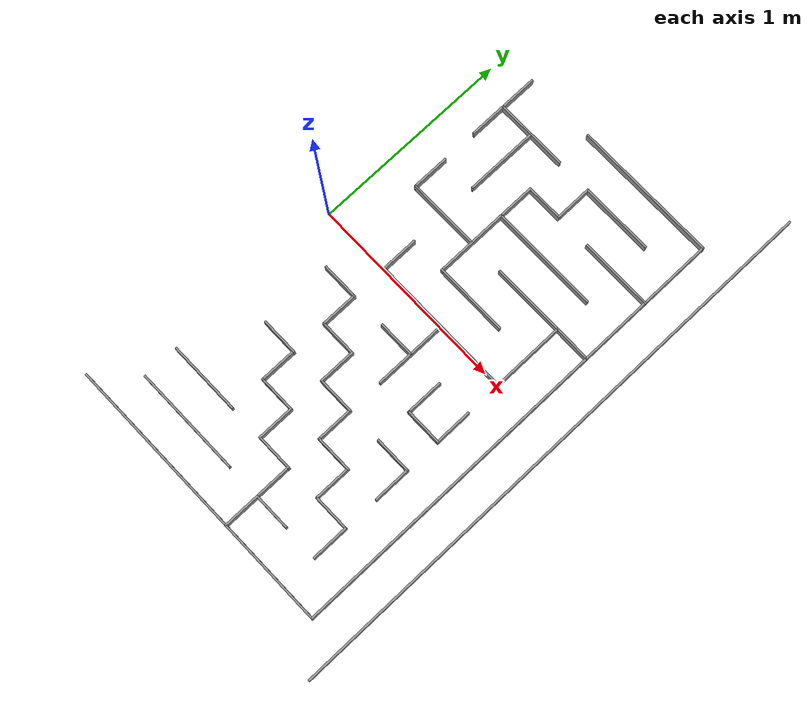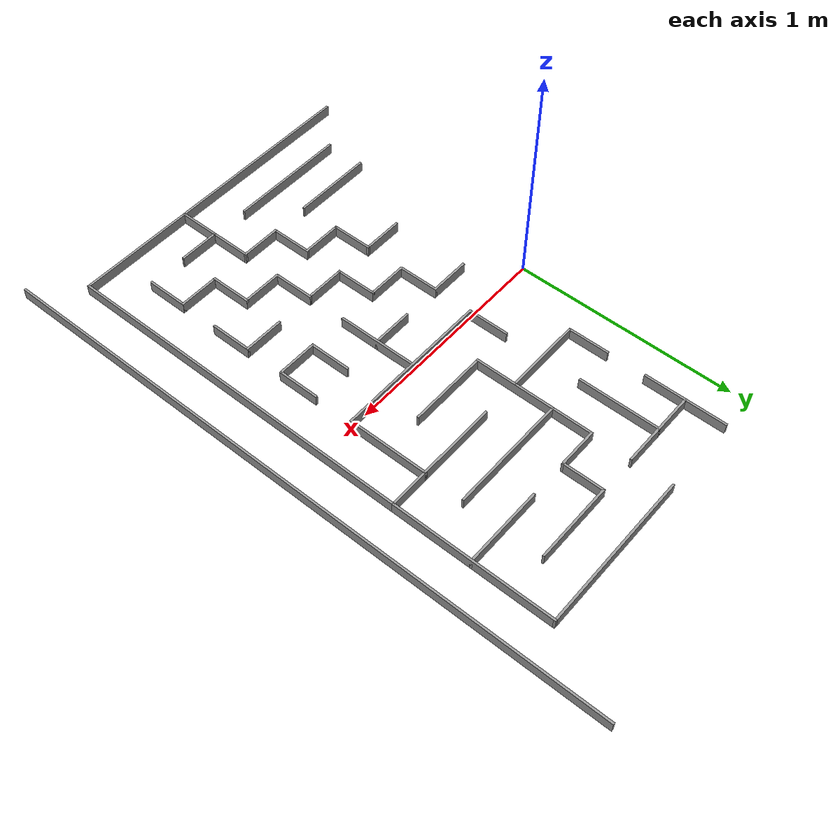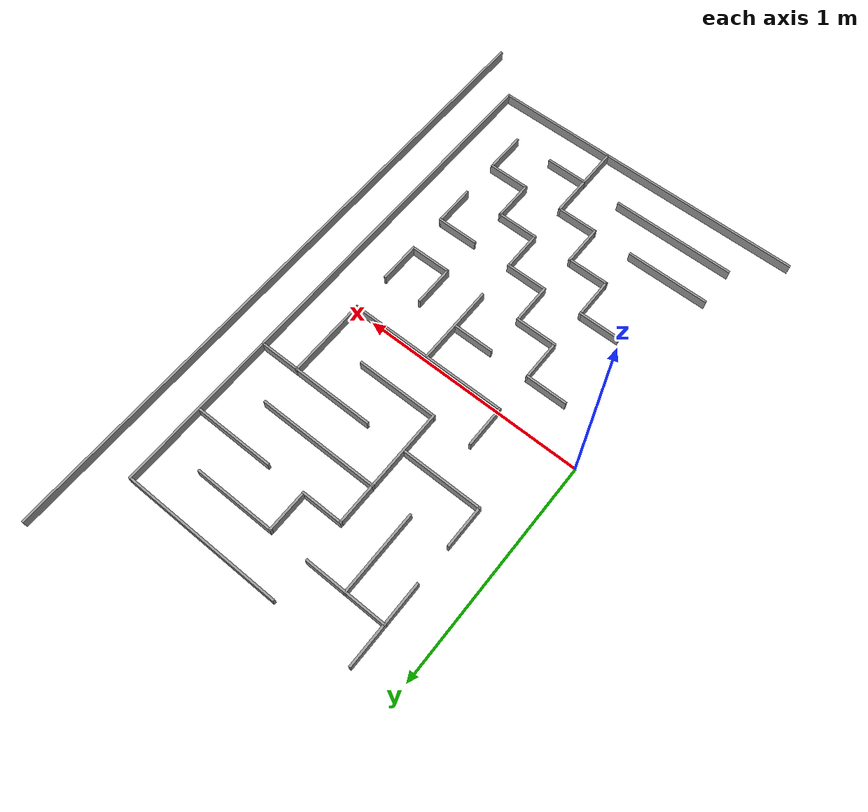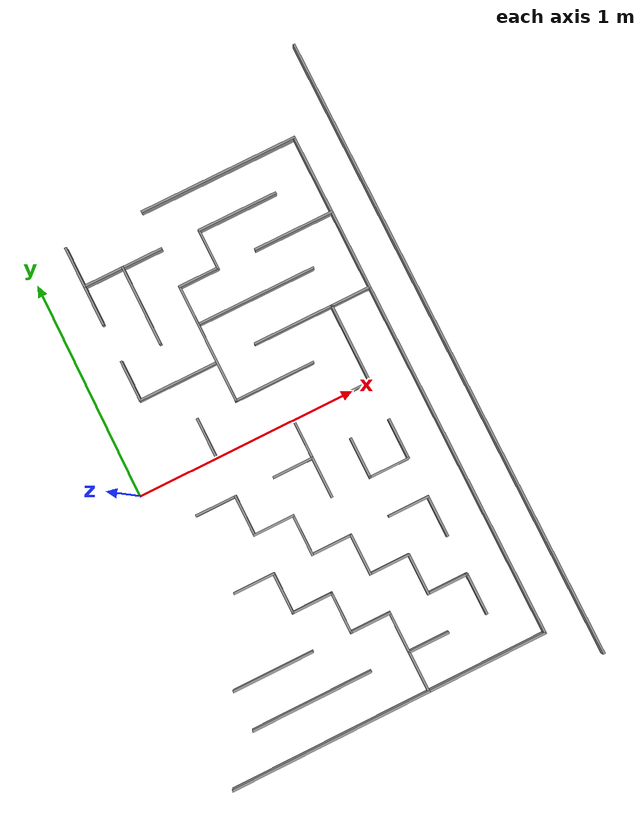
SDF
<sdf version="1.7">
 <model name="Maze1">
  <pose>-0.527918 0 0 0 -0 0</pose>
  <link name="Wall_115">
   <collision name="Wall_115_Collision">
    <geometry><box><size>0.19 0.01 0.05</size></box></geometry>
    <pose>0 0 0.025 0 -0 0</pose>
   </collision>
   <visual name="Wall_115_Visual">
    <pose>0 0 0.025 0 -0 0</pose>
    <geometry><box><size>0.19 0.01 0.05</size></box></geometry>
    <material>
     <script><uri>file://media/materials/scripts/gazebo.material</uri><name>Gazebo/Grey</name></script>
     <ambient>1 1 1 1</ambient>
    </material>
    <meta><layer>0</layer></meta>
   </visual>
   <pose>0.977918 -0.72 0 0 -0 3.14159</pose>
  </link>
  <link name="Wall_116">
   <collision name="Wall_116_Collision">
    <geometry><box><size>0.19 0.01 0.05</size></box></geometry>
    <pose>0 0 0.025 0 -0 0</pose>
   </collision>
   <visual name="Wall_116_Visual">
    <pose>0 0 0.025 0 -0 0</pose>
    <geometry><box><size>0.19 0.01 0.05</size></box></geometry>
    <material>
     <script><uri>file://media/materials/scripts/gazebo.material</uri><name>Gazebo/Grey</name></script>
     <ambient>1 1 1 1</ambient>
    </material>
    <meta><layer>0</layer></meta>
   </visual>
   <pose>0.887918 -0.63 0 0 -0 1.5708</pose>
  </link>
  <link name="Wall_117">
   <collision name="Wall_117_Collision">
    <geometry><box><size>0.190641 0.01 0.05</size></box></geometry>
    <pose>0 0 0.025 0 -0 0</pose>
   </collision>
   <visual name="Wall_117_Visual">
    <pose>0 0 0.025 0 -0 0</pose>
    <geometry><box><size>0.190641 0.01 0.05</size></box></geometry>
    <material>
     <script><uri>file://media/materials/scripts/gazebo.material</uri><name>Gazebo/Grey</name></script>
     <ambient>1 1 1 1</ambient>
    </material>
    <meta><layer>0</layer></meta>
   </visual>
   <pose>0.797918 -0.54 0 0 -0 3.14159</pose>
  </link>
  <link name="Wall_123">
   <collision name="Wall_123_Collision">
    <geometry><box><size>0.37 0.01 0.05</size></box></geometry>
    <pose>0 0 0.025 0 -0 0</pose>
   </collision>
   <visual name="Wall_123_Visual">
    <pose>0 0 0.025 0 -0 0</pose>
    <geometry><box><size>0.37 0.01 0.05</size></box></geometry>
    <material>
     <script><uri>file://media/materials/scripts/gazebo.material</uri><name>Gazebo/Grey</name></script>
     <ambient>1 1 1 1</ambient>
    </material>
    <meta><layer>0</layer></meta>
   </visual>
   <pose>0.707918 -0.9 0 0 -0 0</pose>
  </link>
  <link name="Wall_125">
   <collision name="Wall_125_Collision">
    <geometry><box><size>0.55 0.01 0.05</size></box></geometry>
    <pose>0 0 0.025 0 -0 0</pose>
   </collision>
   <visual name="Wall_125_Visual">
    <pose>0 0 0.025 0 -0 0</pose>
    <geometry><box><size>0.55 0.01 0.05</size></box></geometry>
    <material>
     <script><uri>file://media/materials/scripts/gazebo.material</uri><name>Gazebo/Grey</name></script>
     <ambient>1 1 1 1</ambient>
    </material>
    <meta><layer>0</layer></meta>
   </visual>
   <pose>1.51792 -1.26 0 0 -0 0</pose>
  </link>
  <link name="Wall_126">
   <collision name="Wall_126_Collision">
    <geometry><box><size>1.63 0.01 0.05</size></box></geometry>
    <pose>0 0 0.025 0 -0 0</pose>
   </collision>
   <visual name="Wall_126_Visual">
    <pose>0 0 0.025 0 -0 0</pose>
    <geometry><box><size>1.63 0.01 0.05</size></box></geometry>
    <material>
     <script><uri>file://media/materials/scripts/gazebo.material</uri><name>Gazebo/Grey</name></script>
     <ambient>1 1 1 1</ambient>
    </material>
    <meta><layer>0</layer></meta>
   </visual>
   <pose>1.78792 -0.45 0 0 -0 1.5708</pose>
  </link>
  <link name="Wall_135">
   <collision name="Wall_135_Collision">
    <geometry><box><size>0.19 0.01 0.05</size></box></geometry>
    <pose>0 0 0.025 0 -0 0</pose>
   </collision>
   <visual name="Wall_135_Visual">
    <pose>0 0 0.025 0 -0 0</pose>
    <geometry><box><size>0.19 0.01 0.05</size></box></geometry>
    <material>
     <script><uri>file://media/materials/scripts/gazebo.material</uri><name>Gazebo/Grey</name></script>
     <ambient>1 1 1 1</ambient>
    </material>
    <meta><layer>0</layer></meta>
   </visual>
   <pose>1.51792 -0.54 0 0 -0 0</pose>
  </link>
  <link name="Wall_136">
   <collision name="Wall_136_Collision">
    <geometry><box><size>0.19 0.01 0.05</size></box></geometry>
    <pose>0 0 0.025 0 -0 0</pose>
   </collision>
   <visual name="Wall_136_Visual">
    <pose>0 0 0.025 0 -0 0</pose>
    <geometry><box><size>0.19 0.01 0.05</size></box></geometry>
    <material>
     <script><uri>file://media/materials/scripts/gazebo.material</uri><name>Gazebo/Grey</name></script>
     <ambient>1 1 1 1</ambient>
    </material>
    <meta><layer>0</layer></meta>
   </visual>
   <pose>1.60792 -0.63 0 0 -0 -1.5708</pose>
  </link>
  <link name="Wall_138">
   <collision name="Wall_138_Collision">
    <geometry><box><size>0.19 0.01 0.05</size></box></geometry>
    <pose>0 0 0.025 0 -0 0</pose>
   </collision>
   <visual name="Wall_138_Visual">
    <pose>0 0 0.025 0 -0 0</pose>
    <geometry><box><size>0.19 0.01 0.05</size></box></geometry>
    <material>
     <script><uri>file://media/materials/scripts/gazebo.material</uri><name>Gazebo/Grey</name></script>
     <ambient>1 1 1 1</ambient>
    </material>
    <meta><layer>0</layer></meta>
   </visual>
   <pose>1.42792 -0.27 0 0 -0 -1.5708</pose>
  </link>
  <link name="Wall_139">
   <collision name="Wall_139_Collision">
    <geometry><box><size>0.19 0.01 0.05</size></box></geometry>
    <pose>0 0 0.025 0 -0 0</pose>
   </collision>
   <visual name="Wall_139_Visual">
    <pose>0 0 0.025 0 -0 0</pose>
    <geometry><box><size>0.19 0.01 0.05</size></box></geometry>
    <material>
     <script><uri>file://media/materials/scripts/gazebo.material</uri><name>Gazebo/Grey</name></script>
     <ambient>1 1 1 1</ambient>
    </material>
    <meta><layer>0</layer></meta>
   </visual>
   <pose>1.51792 -0.36 0 0 -0 0</pose>
  </link>
  <link name="Wall_140">
   <collision name="Wall_140_Collision">
    <geometry><box><size>0.19 0.01 0.05</size></box></geometry>
    <pose>0 0 0.025 0 -0 0</pose>
   </collision>
   <visual name="Wall_140_Visual">
    <pose>0 0 0.025 0 -0 0</pose>
    <geometry><box><size>0.19 0.01 0.05</size></box></geometry>
    <material>
     <script><uri>file://media/materials/scripts/gazebo.material</uri><name>Gazebo/Grey</name></script>
     <ambient>1 1 1 1</ambient>
    </material>
    <meta><layer>0</layer></meta>
   </visual>
   <pose>1.60792 -0.27 0 0 -0 1.5708</pose>
  </link>
  <link name="Wall_142">
   <collision name="Wall_142_Collision">
    <geometry><box><size>0.37 0.01 0.05</size></box></geometry>
    <pose>0 0 0.025 0 -0 0</pose>
   </collision>
   <visual name="Wall_142_Visual">
    <pose>0 0 0.025 0 -0 0</pose>
    <geometry><box><size>0.37 0.01 0.05</size></box></geometry>
    <material>
     <script><uri>file://media/materials/scripts/gazebo.material</uri><name>Gazebo/Grey</name></script>
     <ambient>1 1 1 1</ambient>
    </material>
    <meta><layer>0</layer></meta>
   </visual>
   <pose>1.24792 -0.18 0 0 -0 -1.5708</pose>
  </link>
  <link name="Wall_144">
   <collision name="Wall_144_Collision">
    <geometry><box><size>0.19 0.01 0.05</size></box></geometry>
    <pose>0 0 0.025 0 -0 0</pose>
   </collision>
   <visual name="Wall_144_Visual">
    <pose>0 0 0.025 0 -0 0</pose>
    <geometry><box><size>0.19 0.01 0.05</size></box></geometry>
    <material>
     <script><uri>file://media/materials/scripts/gazebo.material</uri><name>Gazebo/Grey</name></script>
     <ambient>1 1 1 1</ambient>
    </material>
    <meta><layer>0</layer></meta>
   </visual>
   <pose>1.15792 -0.18 0 0 -0 3.14159</pose>
  </link>
  <link name="Wall_15">
   <collision name="Wall_15_Collision">
    <geometry><box><size>0.19 0.01 0.05</size></box></geometry>
    <pose>0 0 0.025 0 -0 0</pose>
   </collision>
   <visual name="Wall_15_Visual">
    <pose>0 0 0.025 0 -0 0</pose>
    <geometry><box><size>0.19 0.01 0.05</size></box></geometry>
    <material>
     <script><uri>file://media/materials/scripts/gazebo.material</uri><name>Gazebo/Grey</name></script>
     <ambient>1 1 1 1</ambient>
    </material>
    <meta><layer>0</layer></meta>
   </visual>
   <pose>0.887918 0.09 0 0 -0 -1.5708</pose>
  </link>
  <link name="Wall_153">
   <collision name="Wall_153_Collision">
    <geometry><box><size>0.73 0.01 0.05</size></box></geometry>
    <pose>0 0 0.025 0 -0 0</pose>
   </collision>
   <visual name="Wall_153_Visual">
    <pose>0 0 0.025 0 -0 0</pose>
    <geometry><box><size>0.73 0.01 0.05</size></box></geometry>
    <material>
     <script><uri>file://media/materials/scripts/gazebo.material</uri><name>Gazebo/Grey</name></script>
     <ambient>1 1 1 1</ambient>
    </material>
    <meta><layer>0</layer></meta>
   </visual>
   <pose>1.78792 0.72 0 0 -0 1.5708</pose>
  </link>
  <link name="Wall_154">
   <collision name="Wall_154_Collision">
    <geometry><box><size>0.73 0.01 0.05</size></box></geometry>
    <pose>0 0 0.025 0 -0 0</pose>
   </collision>
   <visual name="Wall_154_Visual">
    <pose>0 0 0.025 0 -0 0</pose>
    <geometry><box><size>0.73 0.01 0.05</size></box></geometry>
    <material>
     <script><uri>file://media/materials/scripts/gazebo.material</uri><name>Gazebo/Grey</name></script>
     <ambient>1 1 1 1</ambient>
    </material>
    <meta><layer>0</layer></meta>
   </visual>
   <pose>1.42792 1.08 0 0 -0 3.14159</pose>
  </link>
  <link name="Wall_156">
   <collision name="Wall_156_Collision">
    <geometry><box><size>0.37 0.01 0.05</size></box></geometry>
    <pose>0 0 0.025 0 -0 0</pose>
   </collision>
   <visual name="Wall_156_Visual">
    <pose>0 0 0.025 0 -0 0</pose>
    <geometry><box><size>0.37 0.01 0.05</size></box></geometry>
    <material>
     <script><uri>file://media/materials/scripts/gazebo.material</uri><name>Gazebo/Grey</name></script>
     <ambient>1 1 1 1</ambient>
    </material>
    <meta><layer>0</layer></meta>
   </visual>
   <pose>1.60792 0.72 0 0 -0 3.14159</pose>
  </link>
  <link name="Wall_16">
   <collision name="Wall_16_Collision">
    <geometry><box><size>0.73 0.01 0.05</size></box></geometry>
    <pose>0 0 0.025 0 -0 0</pose>
   </collision>
   <visual name="Wall_16_Visual">
    <pose>0 0 0.025 0 -0 0</pose>
    <geometry><box><size>0.73 0.01 0.05</size></box></geometry>
    <material>
     <script><uri>file://media/materials/scripts/gazebo.material</uri><name>Gazebo/Grey</name></script>
     <ambient>1 1 1 1</ambient>
    </material>
    <meta><layer>0</layer></meta>
   </visual>
   <pose>1.24792 0 0 0 -0 0</pose>
  </link>
  <link name="Wall_17">
   <collision name="Wall_17_Collision">
    <geometry><box><size>0.37 0.01 0.05</size></box></geometry>
    <pose>0 0 0.025 0 -0 0</pose>
   </collision>
   <visual name="Wall_17_Visual">
    <pose>0 0 0.025 0 -0 0</pose>
    <geometry><box><size>0.37 0.01 0.05</size></box></geometry>
    <material>
     <script><uri>file://media/materials/scripts/gazebo.material</uri><name>Gazebo/Grey</name></script>
     <ambient>1 1 1 1</ambient>
    </material>
    <meta><layer>0</layer></meta>
   </visual>
   <pose>1.60792 0.18 0 0 -0 1.5708</pose>
  </link>
  <link name="Wall_18">
   <collision name="Wall_18_Collision">
    <geometry><box><size>0.19 0.01 0.05</size></box></geometry>
    <pose>0 0 0.025 0 -0 0</pose>
   </collision>
   <visual name="Wall_18_Visual">
    <pose>0 0 0.025 0 -0 0</pose>
    <geometry><box><size>0.19 0.01 0.05</size></box></geometry>
    <material>
     <script><uri>file://media/materials/scripts/gazebo.material</uri><name>Gazebo/Grey</name></script>
     <ambient>1 1 1 1</ambient>
    </material>
    <meta><layer>0</layer></meta>
   </visual>
   <pose>1.69792 0.36 0 0 -0 0</pose>
  </link>
  <link name="Wall_199">
   <collision name="Wall_199_Collision">
    <geometry><box><size>0.37 0.01 0.05</size></box></geometry>
    <pose>0 0 0.025 0 -0 0</pose>
   </collision>
   <visual name="Wall_199_Visual">
    <pose>0 0 0.025 0 -0 0</pose>
    <geometry><box><size>0.37 0.01 0.05</size></box></geometry>
    <material>
     <script><uri>file://media/materials/scripts/gazebo.material</uri><name>Gazebo/Grey</name></script>
     <ambient>1 1 1 1</ambient>
    </material>
    <meta><layer>0</layer></meta>
   </visual>
   <pose>1.42792 0.9 0 0 -0 3.14159</pose>
  </link>
  <link name="Wall_200">
   <collision name="Wall_200_Collision">
    <geometry><box><size>0.19 0.01 0.05</size></box></geometry>
    <pose>0 0 0.025 0 -0 0</pose>
   </collision>
   <visual name="Wall_200_Visual">
    <pose>0 0 0.025 0 -0 0</pose>
    <geometry><box><size>0.19 0.01 0.05</size></box></geometry>
    <material>
     <script><uri>file://media/materials/scripts/gazebo.material</uri><name>Gazebo/Grey</name></script>
     <ambient>1 1 1 1</ambient>
    </material>
    <meta><layer>0</layer></meta>
   </visual>
   <pose>1.24792 0.81 0 0 -0 -1.5708</pose>
  </link>
  <link name="Wall_201">
   <collision name="Wall_201_Collision">
    <geometry><box><size>0.19 0.01 0.05</size></box></geometry>
    <pose>0 0 0.025 0 -0 0</pose>
   </collision>
   <visual name="Wall_201_Visual">
    <pose>0 0 0.025 0 -0 0</pose>
    <geometry><box><size>0.19 0.01 0.05</size></box></geometry>
    <material>
     <script><uri>file://media/materials/scripts/gazebo.material</uri><name>Gazebo/Grey</name></script>
     <ambient>1 1 1 1</ambient>
    </material>
    <meta><layer>0</layer></meta>
   </visual>
   <pose>1.15792 0.72 0 0 -0 3.14159</pose>
  </link>
  <link name="Wall_202">
   <collision name="Wall_202_Collision">
    <geometry><box><size>0.55 0.01 0.05</size></box></geometry>
    <pose>0 0 0.025 0 -0 0</pose>
   </collision>
   <visual name="Wall_202_Visual">
    <pose>0 0 0.025 0 -0 0</pose>
    <geometry><box><size>0.55 0.01 0.05</size></box></geometry>
    <material>
     <script><uri>file://media/materials/scripts/gazebo.material</uri><name>Gazebo/Grey</name></script>
     <ambient>1 1 1 1</ambient>
    </material>
    <meta><layer>0</layer></meta>
   </visual>
   <pose>1.06792 0.45 0 0 -0 -1.5708</pose>
  </link>
  <link name="Wall_203">
   <collision name="Wall_203_Collision">
    <geometry><box><size>0.370972 0.01 0.05</size></box></geometry>
    <pose>0 0 0.025 0 -0 0</pose>
   </collision>
   <visual name="Wall_203_Visual">
    <pose>0 0 0.025 0 -0 0</pose>
    <geometry><box><size>0.370972 0.01 0.05</size></box></geometry>
    <material>
     <script><uri>file://media/materials/scripts/gazebo.material</uri><name>Gazebo/Grey</name></script>
     <ambient>1 1 1 1</ambient>
    </material>
    <meta><layer>0</layer></meta>
   </visual>
   <pose>1.24792 0.18 0 0 -0 0</pose>
  </link>
  <link name="Wall_209">
   <collision name="Wall_209_Collision">
    <geometry><box><size>0.19 0.01 0.05</size></box></geometry>
    <pose>0 0 0.025 0 -0 0</pose>
   </collision>
   <visual name="Wall_209_Visual">
    <pose>0 0 0.025 0 -0 0</pose>
    <geometry><box><size>0.19 0.01 0.05</size></box></geometry>
    <material>
     <script><uri>file://media/materials/scripts/gazebo.material</uri><name>Gazebo/Grey</name></script>
     <ambient>1 1 1 1</ambient>
    </material>
    <meta><layer>0</layer></meta>
   </visual>
   <pose>0.707918 0.45 0 0 -0 -1.5708</pose>
  </link>
  <link name="Wall_210">
   <collision name="Wall_210_Collision">
    <geometry><box><size>0.37 0.01 0.05</size></box></geometry>
    <pose>0 0 0.025 0 -0 0</pose>
   </collision>
   <visual name="Wall_210_Visual">
    <pose>0 0 0.025 0 -0 0</pose>
    <geometry><box><size>0.37 0.01 0.05</size></box></geometry>
    <material>
     <script><uri>file://media/materials/scripts/gazebo.material</uri><name>Gazebo/Grey</name></script>
     <ambient>1 1 1 1</ambient>
    </material>
    <meta><layer>0</layer></meta>
   </visual>
   <pose>0.887918 0.36 0 0 -0 0</pose>
  </link>
  <link name="Wall_212">
   <collision name="Wall_212_Collision">
    <geometry><box><size>0.37 0.01 0.05</size></box></geometry>
    <pose>0 0 0.025 0 -0 0</pose>
   </collision>
   <visual name="Wall_212_Visual">
    <pose>0 0 0.025 0 -0 0</pose>
    <geometry><box><size>0.37 0.01 0.05</size></box></geometry>
    <material>
     <script><uri>file://media/materials/scripts/gazebo.material</uri><name>Gazebo/Grey</name></script>
     <ambient>1 1 1 1</ambient>
    </material>
    <meta><layer>0</layer></meta>
   </visual>
   <pose>1.42792 0.36 0 0 -0 3.14159</pose>
  </link>
  <link name="Wall_214">
   <collision name="Wall_214_Collision">
    <geometry><box><size>0.55 0.01 0.05</size></box></geometry>
    <pose>0 0 0.025 0 -0 0</pose>
   </collision>
   <visual name="Wall_214_Visual">
    <pose>0 0 0.025 0 -0 0</pose>
    <geometry><box><size>0.55 0.01 0.05</size></box></geometry>
    <material>
     <script><uri>file://media/materials/scripts/gazebo.material</uri><name>Gazebo/Grey</name></script>
     <ambient>1 1 1 1</ambient>
    </material>
    <meta><layer>0</layer></meta>
   </visual>
   <pose>1.33792 0.54 0 0 -0 0</pose>
  </link>
  <link name="Wall_217">
   <collision name="Wall_217_Collision">
    <geometry><box><size>0.19 0.01 0.05</size></box></geometry>
    <pose>0 0 0.025 0 -0 0</pose>
   </collision>
   <visual name="Wall_217_Visual">
    <pose>0 0 0.025 0 -0 0</pose>
    <geometry><box><size>0.19 0.01 0.05</size></box></geometry>
    <material>
     <script><uri>file://media/materials/scripts/gazebo.material</uri><name>Gazebo/Grey</name></script>
     <ambient>1 1 1 1</ambient>
    </material>
    <meta><layer>0</layer></meta>
   </visual>
   <pose>0.707918 0.99 0 0 -0 -1.5708</pose>
  </link>
  <link name="Wall_218">
   <collision name="Wall_218_Collision">
    <geometry><box><size>0.37 0.01 0.05</size></box></geometry>
    <pose>0 0 0.025 0 -0 0</pose>
   </collision>
   <visual name="Wall_218_Visual">
    <pose>0 0 0.025 0 -0 0</pose>
    <geometry><box><size>0.37 0.01 0.05</size></box></geometry>
    <material>
     <script><uri>file://media/materials/scripts/gazebo.material</uri><name>Gazebo/Grey</name></script>
     <ambient>1 1 1 1</ambient>
    </material>
    <meta><layer>0</layer></meta>
   </visual>
   <pose>0.887918 0.9 0 0 -0 0</pose>
  </link>
  <link name="Wall_220">
   <collision name="Wall_220_Collision">
    <geometry><box><size>0.37 0.01 0.05</size></box></geometry>
    <pose>0 0 0.025 0 -0 0</pose>
   </collision>
   <visual name="Wall_220_Visual">
    <pose>0 0 0.025 0 -0 0</pose>
    <geometry><box><size>0.37 0.01 0.05</size></box></geometry>
    <material>
     <script><uri>file://media/materials/scripts/gazebo.material</uri><name>Gazebo/Grey</name></script>
     <ambient>1 1 1 1</ambient>
    </material>
    <meta><layer>0</layer></meta>
   </visual>
   <pose>0.887918 0.72 0 0 -0 -1.5708</pose>
  </link>
  <link name="Wall_224">
   <collision name="Wall_224_Collision">
    <geometry><box><size>0.19 0.01 0.05</size></box></geometry>
    <pose>0 0 0.025 0 -0 0</pose>
   </collision>
   <visual name="Wall_224_Visual">
    <pose>0 0 0.025 0 -0 0</pose>
    <geometry><box><size>0.19 0.01 0.05</size></box></geometry>
    <material>
     <script><uri>file://media/materials/scripts/gazebo.material</uri><name>Gazebo/Grey</name></script>
     <ambient>1 1 1 1</ambient>
    </material>
    <meta><layer>0</layer></meta>
   </visual>
   <pose>0.707918 0.81 0 0 -0 -1.5708</pose>
  </link>
  <link name="Wall_29">
   <collision name="Wall_29_Collision">
    <geometry><box><size>0.19 0.01 0.05</size></box></geometry>
    <pose>0 0 0.025 0 -0 0</pose>
   </collision>
   <visual name="Wall_29_Visual">
    <pose>0 0 0.025 0 -0 0</pose>
    <geometry><box><size>0.19 0.01 0.05</size></box></geometry>
    <material>
     <script><uri>file://media/materials/scripts/gazebo.material</uri><name>Gazebo/Grey</name></script>
     <ambient>1 1 1 1</ambient>
    </material>
    <meta><layer>0</layer></meta>
   </visual>
   <pose>0.797918 -0.18 0 0 -0 0</pose>
  </link>
  <link name="Wall_30">
   <collision name="Wall_30_Collision">
    <geometry><box><size>0.19 0.01 0.05</size></box></geometry>
    <pose>0 0 0.025 0 -0 0</pose>
   </collision>
   <visual name="Wall_30_Visual">
    <pose>0 0 0.025 0 -0 0</pose>
    <geometry><box><size>0.19 0.01 0.05</size></box></geometry>
    <material>
     <script><uri>file://media/materials/scripts/gazebo.material</uri><name>Gazebo/Grey</name></script>
     <ambient>1 1 1 1</ambient>
    </material>
    <meta><layer>0</layer></meta>
   </visual>
   <pose>0.887918 -0.27 0 0 -0 -1.5708</pose>
  </link>
  <link name="Wall_31">
   <collision name="Wall_31_Collision">
    <geometry><box><size>0.19 0.01 0.05</size></box></geometry>
    <pose>0 0 0.025 0 -0 0</pose>
   </collision>
   <visual name="Wall_31_Visual">
    <pose>0 0 0.025 0 -0 0</pose>
    <geometry><box><size>0.19 0.01 0.05</size></box></geometry>
    <material>
     <script><uri>file://media/materials/scripts/gazebo.material</uri><name>Gazebo/Grey</name></script>
     <ambient>1 1 1 1</ambient>
    </material>
    <meta><layer>0</layer></meta>
   </visual>
   <pose>0.977918 -0.36 0 0 -0 0</pose>
  </link>
  <link name="Wall_32">
   <collision name="Wall_32_Collision">
    <geometry><box><size>0.19 0.01 0.05</size></box></geometry>
    <pose>0 0 0.025 0 -0 0</pose>
   </collision>
   <visual name="Wall_32_Visual">
    <pose>0 0 0.025 0 -0 0</pose>
    <geometry><box><size>0.19 0.01 0.05</size></box></geometry>
    <material>
     <script><uri>file://media/materials/scripts/gazebo.material</uri><name>Gazebo/Grey</name></script>
     <ambient>1 1 1 1</ambient>
    </material>
    <meta><layer>0</layer></meta>
   </visual>
   <pose>1.06792 -0.45 0 0 -0 -1.5708</pose>
  </link>
  <link name="Wall_33">
   <collision name="Wall_33_Collision">
    <geometry><box><size>0.19 0.01 0.05</size></box></geometry>
    <pose>0 0 0.025 0 -0 0</pose>
   </collision>
   <visual name="Wall_33_Visual">
    <pose>0 0 0.025 0 -0 0</pose>
    <geometry><box><size>0.19 0.01 0.05</size></box></geometry>
    <material>
     <script><uri>file://media/materials/scripts/gazebo.material</uri><name>Gazebo/Grey</name></script>
     <ambient>1 1 1 1</ambient>
    </material>
    <meta><layer>0</layer></meta>
   </visual>
   <pose>1.15792 -0.54 0 0 -0 0</pose>
  </link>
  <link name="Wall_34">
   <collision name="Wall_34_Collision">
    <geometry><box><size>0.19 0.01 0.05</size></box></geometry>
    <pose>0 0 0.025 0 -0 0</pose>
   </collision>
   <visual name="Wall_34_Visual">
    <pose>0 0 0.025 0 -0 0</pose>
    <geometry><box><size>0.19 0.01 0.05</size></box></geometry>
    <material>
     <script><uri>file://media/materials/scripts/gazebo.material</uri><name>Gazebo/Grey</name></script>
     <ambient>1 1 1 1</ambient>
    </material>
    <meta><layer>0</layer></meta>
   </visual>
   <pose>1.24792 -0.63 0 0 -0 -1.5708</pose>
  </link>
  <link name="Wall_38">
   <collision name="Wall_38_Collision">
    <geometry><box><size>0.19 0.01 0.05</size></box></geometry>
    <pose>0 0 0.025 0 -0 0</pose>
   </collision>
   <visual name="Wall_38_Visual">
    <pose>0 0 0.025 0 -0 0</pose>
    <geometry><box><size>0.19 0.01 0.05</size></box></geometry>
    <material>
     <script><uri>file://media/materials/scripts/gazebo.material</uri><name>Gazebo/Grey</name></script>
     <ambient>1 1 1 1</ambient>
    </material>
    <meta><layer>0</layer></meta>
   </visual>
   <pose>1.33792 -0.72 0 0 -0 0</pose>
  </link>
  <link name="Wall_39">
   <collision name="Wall_39_Collision">
    <geometry><box><size>0.19 0.01 0.05</size></box></geometry>
    <pose>0 0 0.025 0 -0 0</pose>
   </collision>
   <visual name="Wall_39_Visual">
    <pose>0 0 0.025 0 -0 0</pose>
    <geometry><box><size>0.19 0.01 0.05</size></box></geometry>
    <material>
     <script><uri>file://media/materials/scripts/gazebo.material</uri><name>Gazebo/Grey</name></script>
     <ambient>1 1 1 1</ambient>
    </material>
    <meta><layer>0</layer></meta>
   </visual>
   <pose>1.42792 -0.81 0 0 -0 -1.5708</pose>
  </link>
  <link name="Wall_40">
   <collision name="Wall_40_Collision">
    <geometry><box><size>0.19 0.01 0.05</size></box></geometry>
    <pose>0 0 0.025 0 -0 0</pose>
   </collision>
   <visual name="Wall_40_Visual">
    <pose>0 0 0.025 0 -0 0</pose>
    <geometry><box><size>0.19 0.01 0.05</size></box></geometry>
    <material>
     <script><uri>file://media/materials/scripts/gazebo.material</uri><name>Gazebo/Grey</name></script>
     <ambient>1 1 1 1</ambient>
    </material>
    <meta><layer>0</layer></meta>
   </visual>
   <pose>1.51792 -0.9 0 0 -0 0</pose>
  </link>
  <link name="Wall_41">
   <collision name="Wall_41_Collision">
    <geometry><box><size>0.19 0.01 0.05</size></box></geometry>
    <pose>0 0 0.025 0 -0 0</pose>
   </collision>
   <visual name="Wall_41_Visual">
    <pose>0 0 0.025 0 -0 0</pose>
    <geometry><box><size>0.19 0.01 0.05</size></box></geometry>
    <material>
     <script><uri>file://media/materials/scripts/gazebo.material</uri><name>Gazebo/Grey</name></script>
     <ambient>1 1 1 1</ambient>
    </material>
    <meta><layer>0</layer></meta>
   </visual>
   <pose>1.60792 -0.99 0 0 -0 -1.5708</pose>
  </link>
  <link name="Wall_46">
   <collision name="Wall_46_Collision">
    <geometry><box><size>0.91 0.01 0.05</size></box></geometry>
    <pose>0 0 0.025 0 -0 0</pose>
   </collision>
   <visual name="Wall_46_Visual">
    <pose>0 0 0.025 0 -0 0</pose>
    <geometry><box><size>0.91 0.01 0.05</size></box></geometry>
    <material>
     <script><uri>file://media/materials/scripts/gazebo.material</uri><name>Gazebo/Grey</name></script>
     <ambient>1 1 1 1</ambient>
    </material>
    <meta><layer>0</layer></meta>
   </visual>
   <pose>0.797918 -1.26 0 0 -0 0</pose>
  </link>
  <link name="Wall_47">
   <collision name="Wall_47_Collision">
    <geometry><box><size>0.19 0.01 0.05</size></box></geometry>
    <pose>0 0 0.025 0 -0 0</pose>
   </collision>
   <visual name="Wall_47_Visual">
    <pose>0 0 0.025 0 -0 0</pose>
    <geometry><box><size>0.19 0.01 0.05</size></box></geometry>
    <material>
     <script><uri>file://media/materials/scripts/gazebo.material</uri><name>Gazebo/Grey</name></script>
     <ambient>1 1 1 1</ambient>
    </material>
    <meta><layer>0</layer></meta>
   </visual>
   <pose>1.24792 -1.17 0 0 -0 1.5708</pose>
  </link>
  <link name="Wall_48">
   <collision name="Wall_48_Collision">
    <geometry><box><size>0.19 0.01 0.05</size></box></geometry>
    <pose>0 0 0.025 0 -0 0</pose>
   </collision>
   <visual name="Wall_48_Visual">
    <pose>0 0 0.025 0 -0 0</pose>
    <geometry><box><size>0.19 0.01 0.05</size></box></geometry>
    <material>
     <script><uri>file://media/materials/scripts/gazebo.material</uri><name>Gazebo/Grey</name></script>
     <ambient>1 1 1 1</ambient>
    </material>
    <meta><layer>0</layer></meta>
   </visual>
   <pose>1.33792 -1.08 0 0 -0 0</pose>
  </link>
  <link name="Wall_52">
   <collision name="Wall_52_Collision">
    <geometry><box><size>0.19 0.01 0.05</size></box></geometry>
    <pose>0 0 0.025 0 -0 0</pose>
   </collision>
   <visual name="Wall_52_Visual">
    <pose>0 0 0.025 0 -0 0</pose>
    <geometry><box><size>0.19 0.01 0.05</size></box></geometry>
    <material>
     <script><uri>file://media/materials/scripts/gazebo.material</uri><name>Gazebo/Grey</name></script>
     <ambient>1 1 1 1</ambient>
    </material>
    <meta><layer>0</layer></meta>
   </visual>
   <pose>1.24792 -0.99 0 0 -0 1.5708</pose>
  </link>
  <link name="Wall_53">
   <collision name="Wall_53_Collision">
    <geometry><box><size>0.19 0.01 0.05</size></box></geometry>
    <pose>0 0 0.025 0 -0 0</pose>
   </collision>
   <visual name="Wall_53_Visual">
    <pose>0 0 0.025 0 -0 0</pose>
    <geometry><box><size>0.19 0.01 0.05</size></box></geometry>
    <material>
     <script><uri>file://media/materials/scripts/gazebo.material</uri><name>Gazebo/Grey</name></script>
     <ambient>1 1 1 1</ambient>
    </material>
    <meta><layer>0</layer></meta>
   </visual>
   <pose>1.15792 -0.9 0 0 -0 3.14159</pose>
  </link>
  <link name="Wall_54">
   <collision name="Wall_54_Collision">
    <geometry><box><size>0.19 0.01 0.05</size></box></geometry>
    <pose>0 0 0.025 0 -0 0</pose>
   </collision>
   <visual name="Wall_54_Visual">
    <pose>0 0 0.025 0 -0 0</pose>
    <geometry><box><size>0.19 0.01 0.05</size></box></geometry>
    <material>
     <script><uri>file://media/materials/scripts/gazebo.material</uri><name>Gazebo/Grey</name></script>
     <ambient>1 1 1 1</ambient>
    </material>
    <meta><layer>0</layer></meta>
   </visual>
   <pose>1.06792 -0.81 0 0 -0 1.5708</pose>
  </link>
  <link name="Wall_6">
   <collision name="Wall_6_Collision">
    <geometry><box><size>2.89 0.01 0.05</size></box></geometry>
    <pose>0 0 0.025 0 -0 0</pose>
   </collision>
   <visual name="Wall_6_Visual">
    <pose>0 0 0.025 0 -0 0</pose>
    <geometry><box><size>2.89 0.01 0.05</size></box></geometry>
    <material>
     <script><uri>file://media/materials/scripts/gazebo.material</uri><name>Gazebo/Grey</name></script>
     <ambient>1 1 1 1</ambient>
    </material>
    <meta><layer>0</layer></meta>
   </visual>
   <pose>1.96792 0 0 0 -0 -1.5708</pose>
  </link>
  <link name="Wall_63">
   <collision name="Wall_63_Collision">
    <geometry><box><size>0.55 0.01 0.05</size></box></geometry>
    <pose>0 0 0.025 0 -0 0</pose>
   </collision>
   <visual name="Wall_63_Visual">
    <pose>0 0 0.025 0 -0 0</pose>
    <geometry><box><size>0.55 0.01 0.05</size></box></geometry>
    <material>
     <script><uri>file://media/materials/scripts/gazebo.material</uri><name>Gazebo/Grey</name></script>
     <ambient>1 1 1 1</ambient>
    </material>
    <meta><layer>0</layer></meta>
   </visual>
   <pose>0.797918 -1.08 0 0 -0 0</pose>
  </link>
  <static>1</static>
 </model>
</sdf>
